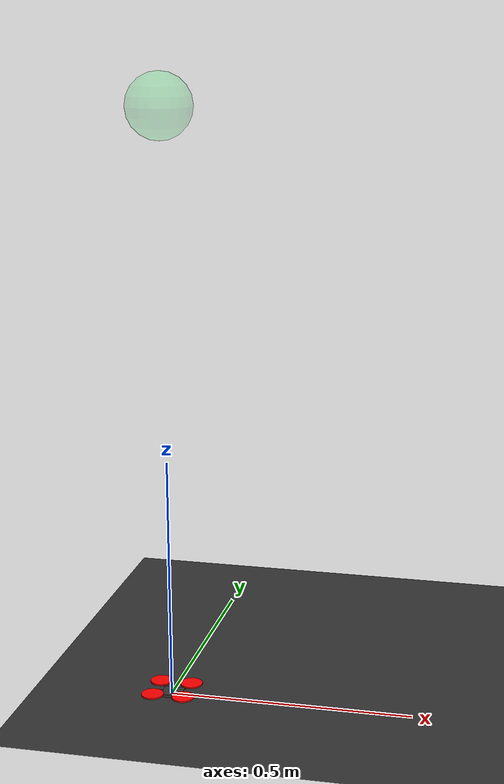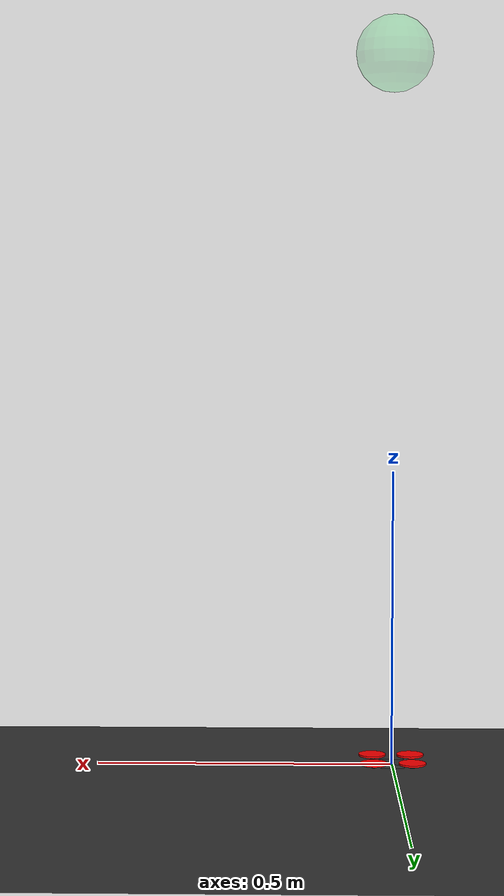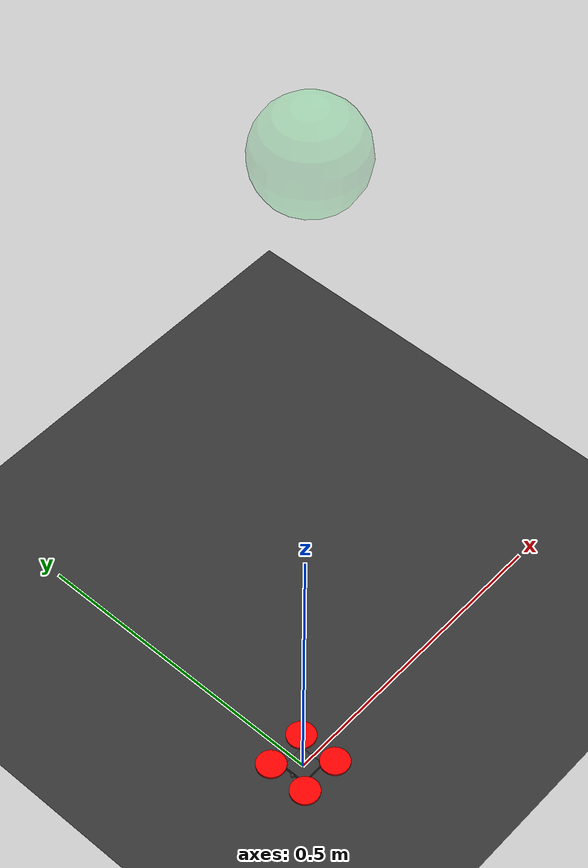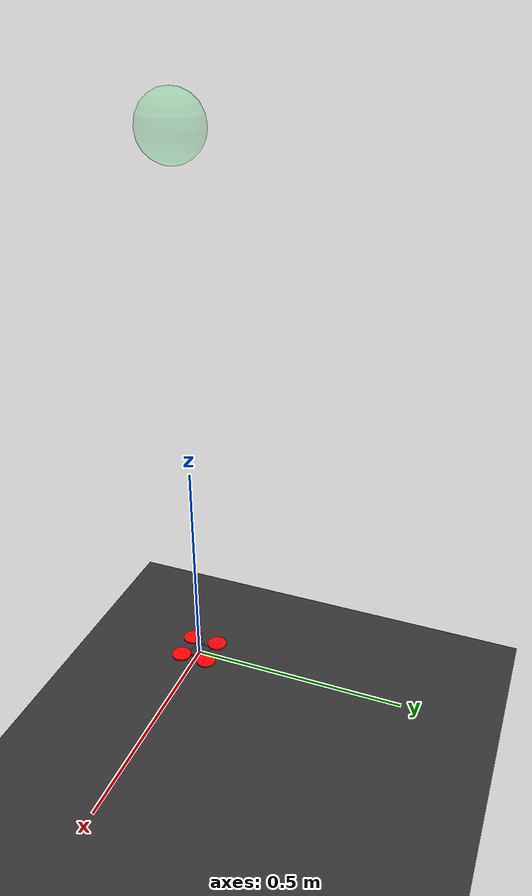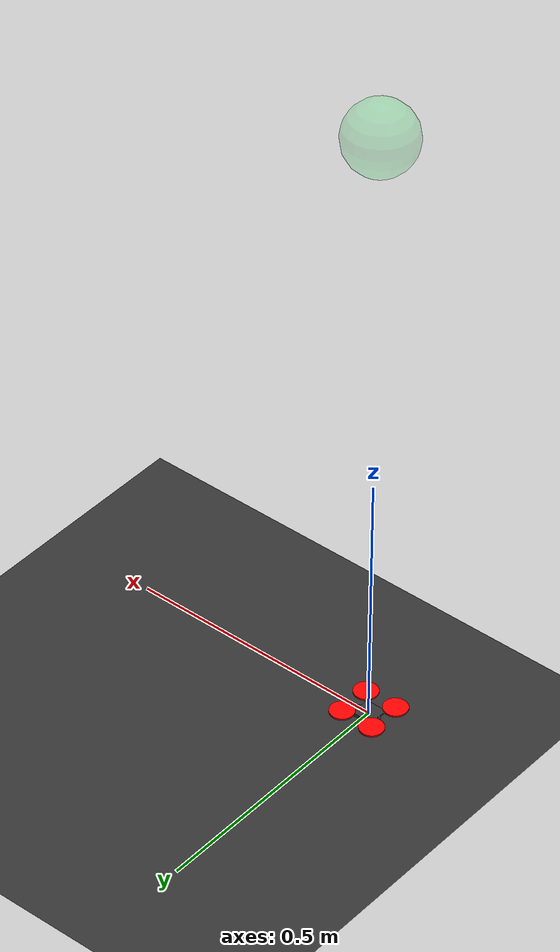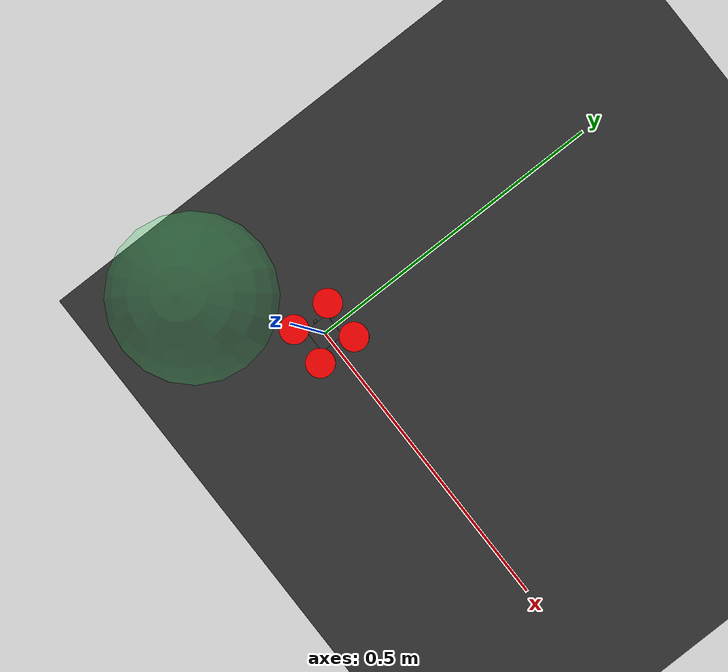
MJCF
<mujoco model="quadcopter_scene">
  <include file="quadcopter.xml"/>

  <option timestep="0.001" gravity="0 0 -9.81" integrator="Euler" density="1.225" viscosity="1.8e-5"/>

  <visual>
    <headlight ambient="0.35 0.35 0.35" diffuse="0.75 0.75 0.75" specular="0.2 0.2 0.2"/>
    <rgba haze="0.08 0.12 0.18 1"/>
    <quality shadowsize="4096"/>
    <map shadowclip="1.0" znear="0.01"/>
    <global azimuth="140" elevation="-20" offwidth="1920" offheight="1080"/>
  </visual>

  <asset>
    <!-- Sleek deep gradient skybox -->
    <texture type="skybox" builtin="gradient" rgb1="0.10 0.15 0.25" rgb2="0.02 0.03 0.06" width="512" height="512"/>

    <!-- High-visibility checkered ground grid -->
    <texture name="grid" type="2d" builtin="checker" width="512" height="512"
             rgb1="0.15 0.18 0.24" rgb2="0.22 0.26 0.34"/>
    <material name="grid_mat" texture="grid" texrepeat="10 10" texuniform="true" reflectance="0.12" roughness="0.6"/>

    <!-- Translucent target footprint material -->
    <material name="target_ring_mat" rgba="0.2 0.85 0.4 0.35"/>
  </asset>

  <worldbody>
    <!-- Default Framing Cameras (Positioned close to drone for optimal visibility) -->
    <camera name="isometric" mode="fixed" pos="0.75 -0.75 1.4" xyaxes="0.707 0.707 0 -0.38 0.38 0.84"/>
    <camera name="side_view" mode="fixed" pos="0 -1.0 1.0" xyaxes="1 0 0 0 0 1"/>
    <camera name="tracking" mode="trackcom" pos="0.7 -0.7 0.35" xyaxes="0.707 0.707 0 -0.38 0.38 0.84"/>

    <!-- High-Visibility Physical Ground Plane (Floor) -->
    <geom name="floor" type="plane" size="10 10 0.05" material="grid_mat" friction="1.0 0.005 0.0001" contype="1" conaffinity="1"/>

    <!-- Primary Directional Sun Light with Shadows -->
    <light directional="true" pos="2 -2 6" dir="-0.3 0.3 -1.0" diffuse="0.9 0.9 0.9" specular="0.3 0.3 0.3" castshadow="true"/>
    <!-- Fill light for soft illumination -->
    <light directional="false" pos="-2 2 4" diffuse="0.35 0.35 0.4" specular="0 0 0"/>

    <!-- Target Waypoint Visual Indicator at active waypoint position -->
    <body name="target_marker" pos="0 0 1.2" mocap="true">
      <geom name="target_core" type="sphere" size="0.035" rgba="0.2 0.95 0.4 0.7" contype="0" conaffinity="0"/>
      <geom name="target_aura" type="sphere" size="0.065" rgba="0.2 0.95 0.4 0.25" contype="0" conaffinity="0"/>
    </body>
  </worldbody>
</mujoco>

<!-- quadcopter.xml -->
<mujoco model="crazyflie_2x">
  <compiler angle="radian" coordinate="local" inertiafromgeom="false" balanceinertia="false"/>

  <default>
    <joint damping="0.001"/>
    <geom contype="1" conaffinity="1" density="0" rgba="0.2 0.2 0.2 1" solref="0.005 1" solimp="0.9 0.95 0.001"/>
    <site size="0.005" rgba="1 0 0 1"/>
  </default>

  <asset>
    <material name="chassis_mat" rgba="0.12 0.12 0.15 1.0" shininess="0.6" reflectance="0.2"/>
    <material name="battery_mat" rgba="0.25 0.28 0.32 1.0" shininess="0.3"/>
    <material name="arm_mat" rgba="0.18 0.20 0.22 1.0"/>
    <material name="prop_front" rgba="1.0 0.38 0.12 0.7"/>
    <material name="prop_rear" rgba="0.15 0.60 1.0 0.7"/>
    <material name="led_front" rgba="0.0 1.0 0.75 1.0"/>
    <material name="led_rear" rgba="1.0 0.15 0.25 1.0"/>
    <material name="motor_metal" rgba="0.75 0.75 0.80 1.0" shininess="0.9"/>
  </asset>

  <worldbody>
    <!-- 6-DoF Floating Base Drone Body -->
    <body name="quadcopter" pos="0 0 0">
      <freejoint name="root"/>

      <inertial pos="0 0 0" mass="0.033" diaginertia="1.685e-5 1.685e-5 3.359e-5"/>

      <!-- Central Body Geometry -->
      <geom name="chassis" type="box" size="0.02 0.02 0.005" material="chassis_mat"/>
      <geom name="battery" type="box" size="0.015 0.01 0.005" pos="0 0 -0.006" material="battery_mat"/>

      <!-- Visual Direction Indicators (Green = Front/Heading, Red = Tail) -->
      <geom name="heading_led" type="sphere" pos="0.023 0 0.003" size="0.0035" material="led_front" contype="0" conaffinity="0"/>
      <geom name="tail_led" type="sphere" pos="-0.023 0 0.003" size="0.003" material="led_rear" contype="0" conaffinity="0"/>

      <!-- Arms (Visual only - collision disabled to optimize broadphase) -->
      <geom name="arm_fl" type="capsule" fromto="0 0 0 0.0325 0.0325 0.005" size="0.002" material="arm_mat" contype="0" conaffinity="0"/>
      <geom name="arm_fr" type="capsule" fromto="0 0 0 0.0325 -0.0325 0.005" size="0.002" material="arm_mat" contype="0" conaffinity="0"/>
      <geom name="arm_rr" type="capsule" fromto="0 0 0 -0.0325 -0.0325 0.005" size="0.002" material="arm_mat" contype="0" conaffinity="0"/>
      <geom name="arm_rl" type="capsule" fromto="0 0 0 -0.0325 0.0325 0.005" size="0.002" material="arm_mat" contype="0" conaffinity="0"/>

      <!-- Motor Cans (Visual only) -->
      <geom name="motor_can_fl" type="cylinder" pos="0.0325 0.0325 0.006" size="0.0045 0.003" material="motor_metal" contype="0" conaffinity="0"/>
      <geom name="motor_can_fr" type="cylinder" pos="0.0325 -0.0325 0.006" size="0.0045 0.003" material="motor_metal" contype="0" conaffinity="0"/>
      <geom name="motor_can_rr" type="cylinder" pos="-0.0325 -0.0325 0.006" size="0.0045 0.003" material="motor_metal" contype="0" conaffinity="0"/>
      <geom name="motor_can_rl" type="cylinder" pos="-0.0325 0.0325 0.006" size="0.0045 0.003" material="motor_metal" contype="0" conaffinity="0"/>

      <!-- Landing Pegs (Ground Contact Colliders) -->
      <geom name="leg_fl" type="sphere" pos="0.0325 0.0325 -0.01" size="0.003" rgba="0.1 0.1 0.1 1"/>
      <geom name="leg_fr" type="sphere" pos="0.0325 -0.0325 -0.01" size="0.003" rgba="0.1 0.1 0.1 1"/>
      <geom name="leg_rr" type="sphere" pos="-0.0325 -0.0325 -0.01" size="0.003" rgba="0.1 0.1 0.1 1"/>
      <geom name="leg_rl" type="sphere" pos="-0.0325 0.0325 -0.01" size="0.003" rgba="0.1 0.1 0.1 1"/>

      <!-- Rotor Application Sites (Translucent Prop Discs) -->
      <site name="rotor_fl" pos="0.0325 0.0325 0.01" size="0.023 0.0015" type="cylinder" material="prop_front"/>
      <site name="rotor_fr" pos="0.0325 -0.0325 0.01" size="0.023 0.0015" type="cylinder" material="prop_front"/>
      <site name="rotor_rr" pos="-0.0325 -0.0325 0.01" size="0.023 0.0015" type="cylinder" material="prop_rear"/>
      <site name="rotor_rl" pos="-0.0325 0.0325 0.01" size="0.023 0.0015" type="cylinder" material="prop_rear"/>

      <!-- Onboard IMU Sensor Site -->
      <site name="imu" pos="0 0 0" size="0.002"/>
    </body>
  </worldbody>

  <!-- Actuator Definitions: Rotor Thrust (N) and Reactive Drag Torque -->
  <actuator>
    <motor name="motor_fl" site="rotor_fl" gear="0 0 1 0 0 -0.0361" ctrlrange="0 0.20"/>
    <motor name="motor_fr" site="rotor_fr" gear="0 0 1 0 0 0.0361" ctrlrange="0 0.20"/>
    <motor name="motor_rr" site="rotor_rr" gear="0 0 1 0 0 -0.0361" ctrlrange="0 0.20"/>
    <motor name="motor_rl" site="rotor_rl" gear="0 0 1 0 0 0.0361" ctrlrange="0 0.20"/>
  </actuator>

  <!-- Built-in Realistic Sensors -->
  <sensor>
    <accelerometer name="accelerometer" site="imu"/>
    <gyro name="gyro" site="imu"/>
    <framequat name="orientation" objtype="site" objname="imu"/>
    <framelinvel name="linear_velocity" objtype="site" objname="imu"/>
    <framepos name="position" objtype="site" objname="imu"/>
  </sensor>
</mujoco>
